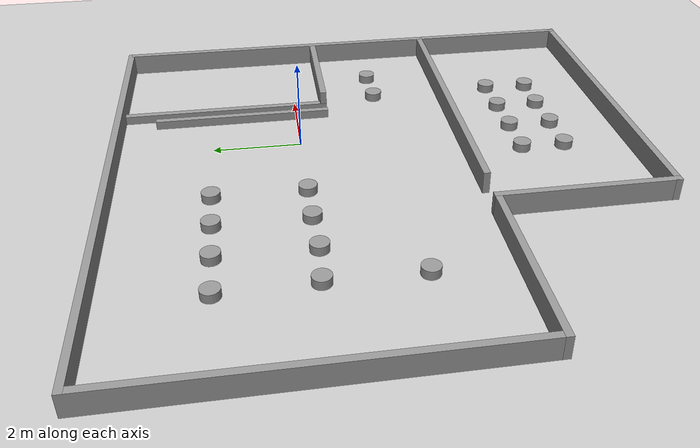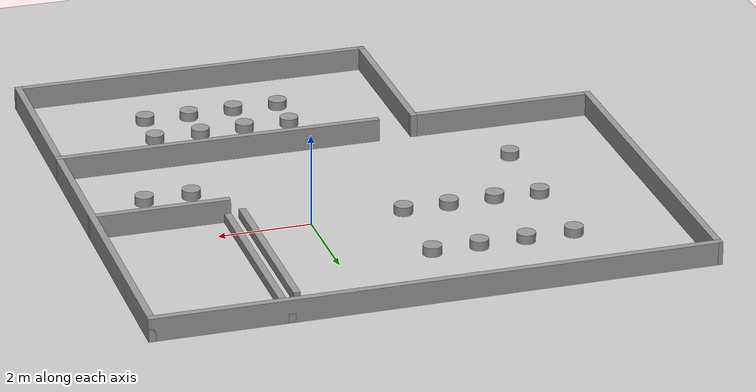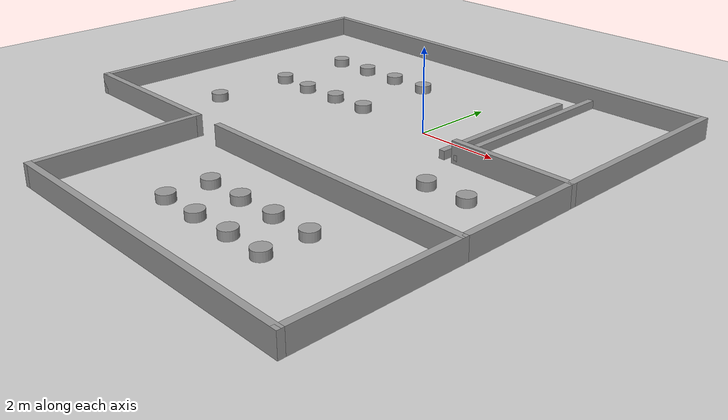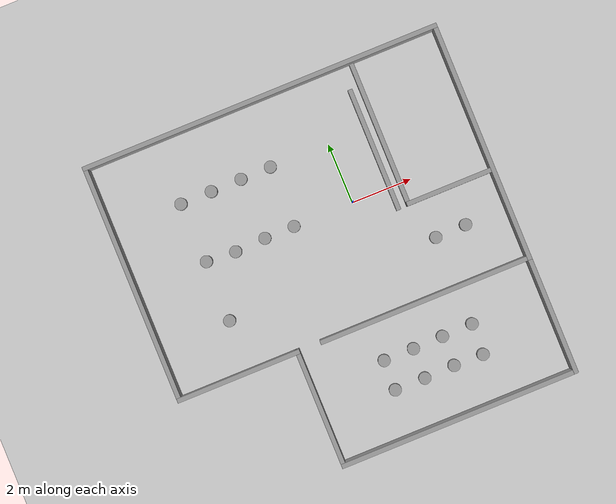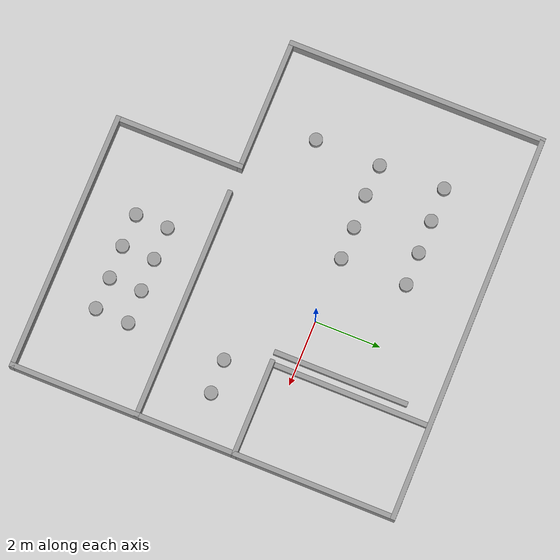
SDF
<sdf version="1.7">
 <world name="default">
  <scene><ambient>0.4 0.4 0.4 1</ambient><background>0.7 0.7 0.7 1</background><shadows>1</shadows></scene>
  <light name="sun" type="directional">
   <pose>0 0 10 0 -0 0</pose>
   <diffuse>0.8 0.8 0.8 1</diffuse>
   <specular>0.2 0.2 0.2 1</specular>
   <attenuation>
    <range>1000</range>
    <constant>0.9</constant>
    <linear>0.01</linear>
    <quadratic>0.001</quadratic>
   </attenuation>
   <direction>-0.5 0.1 -0.9</direction>
   <spot><inner_angle>0</inner_angle><outer_angle>0</outer_angle><falloff>0</falloff></spot>
  </light>
  <model name="ground_plane">
   <static>1</static>
   <link name="link">
    <collision name="collision">
     <geometry><plane><normal>0 0 1</normal><size>100 100</size></plane></geometry>
     <surface>
      <contact><collide_bitmask>65535</collide_bitmask></contact>
      <friction><ode><mu>100</mu><mu2>50</mu2></ode></friction>
     </surface>
    </collision>
    <visual name="visual">
     <cast_shadows>0</cast_shadows>
     <geometry><plane><normal>0 0 1</normal><size>100 100</size></plane></geometry>
     <material>
      <script><uri>file://media/materials/scripts/gazebo.material</uri><name>Gazebo/Grey</name></script>
     </material>
    </visual>
   </link>
  </model>
  <physics type="ode">
   <real_time_update_rate>1000</real_time_update_rate>
   <max_step_size>0.001</max_step_size>
   <real_time_factor>1</real_time_factor>
   <ode>
    <solver>
     <type>quick</type>
     <iters>150</iters>
     <precon_iters>0</precon_iters>
     <sor>1.4</sor>
     <use_dynamic_moi_rescaling>1</use_dynamic_moi_rescaling>
    </solver>
    <constraints>
     <cfm>1e-05</cfm>
     <erp>0.2</erp>
     <contact_max_correcting_vel>2000</contact_max_correcting_vel>
     <contact_surface_layer>0.01</contact_surface_layer>
    </constraints>
   </ode>
  </physics>
  <gravity>0 0 -9.8</gravity>
  <magnetic_field>6e-06 2.3e-05 -4.2e-05</magnetic_field>
  <atmosphere type="adiabatic"/>
  <spherical_coordinates>
   <surface_model>EARTH_WGS84</surface_model>
   <latitude_deg>0</latitude_deg>
   <longitude_deg>0</longitude_deg>
   <elevation>0</elevation>
   <heading_deg>0</heading_deg>
  </spherical_coordinates>
  <model name="cafe3">
   <pose>-1.4448 -1.6924 0 0 -0 0</pose>
   <link name="Wall_0">
    <collision name="Wall_0_Collision">
     <geometry><box><size>12 0.15 0.5</size></box></geometry>
     <pose>0 0 0.25 0 -0 0</pose>
    </collision>
    <visual name="Wall_0_Visual">
     <pose>0 0 0.25 0 -0 0</pose>
     <geometry><box><size>12 0.15 0.5</size></box></geometry>
     <material>
      <script><uri>file://media/materials/scripts/gazebo.material</uri><name>Gazebo/Grey</name></script>
      <ambient>1 1 1 1</ambient>
     </material>
     <meta><layer>0</layer></meta>
    </visual>
    <pose>0 5.85 0 0 -0 0</pose>
   </link>
   <link name="Wall_1">
    <collision name="Wall_1_Collision">
     <geometry><box><size>8 0.15 0.5</size></box></geometry>
     <pose>0 0 0.25 0 -0 0</pose>
    </collision>
    <visual name="Wall_1_Visual">
     <pose>0 0 0.25 0 -0 0</pose>
     <geometry><box><size>8 0.15 0.5</size></box></geometry>
     <material>
      <script><uri>file://media/materials/scripts/gazebo.material</uri><name>Gazebo/Grey</name></script>
      <ambient>1 1 1 1</ambient>
     </material>
     <meta><layer>0</layer></meta>
    </visual>
    <pose>5.925 1.925 0 0 -0 -1.5708</pose>
   </link>
   <link name="Wall_11">
    <collision name="Wall_11_Collision">
     <geometry><box><size>5 0.15 0.2</size></box></geometry>
     <pose>0 0 0.1 0 -0 0</pose>
    </collision>
    <visual name="Wall_11_Visual">
     <pose>0 0 0.1 0 -0 0</pose>
     <geometry><box><size>5 0.15 0.2</size></box></geometry>
     <material>
      <script><uri>file://media/materials/scripts/gazebo.material</uri><name>Gazebo/Grey</name></script>
      <ambient>1 1 1 1</ambient>
     </material>
     <meta><layer>0</layer></meta>
    </visual>
    <pose>3.075 3.425 0 0 -0 -1.5708</pose>
   </link>
   <link name="Wall_15">
    <collision name="Wall_15_Collision">
     <geometry><box><size>3 0.15 0.5</size></box></geometry>
     <pose>0 0 0.25 0 -0 0</pose>
    </collision>
    <visual name="Wall_15_Visual">
     <pose>0 0 0.25 0 -0 0</pose>
     <geometry><box><size>3 0.15 0.5</size></box></geometry>
     <material>
      <script><uri>file://media/materials/scripts/gazebo.material</uri><name>Gazebo/Grey</name></script>
      <ambient>1 1 1 1</ambient>
     </material>
     <meta><layer>0</layer></meta>
    </visual>
    <pose>4.5 1 0 0 -0 0</pose>
   </link>
   <link name="Wall_18">
    <collision name="Wall_18_Collision">
     <geometry><box><size>4.114 0.15 0.2</size></box></geometry>
     <pose>0 0 0.1 0 -0 0</pose>
    </collision>
    <visual name="Wall_18_Visual">
     <pose>0 0 0.1 0 -0 0</pose>
     <geometry><box><size>4.114 0.15 0.2</size></box></geometry>
     <material>
      <script><uri>file://media/materials/scripts/gazebo.material</uri><name>Gazebo/Grey</name></script>
      <ambient>1 1 1 1</ambient>
     </material>
     <meta><layer>0</layer></meta>
    </visual>
    <pose>2.725 2.982 0 0 -0 1.5708</pose>
   </link>
   <link name="Wall_24">
    <collision name="Wall_24_Collision">
     <geometry><box><size>4.15 0.15 0.5</size></box></geometry>
     <pose>0 0 0.25 0 -0 0</pose>
    </collision>
    <visual name="Wall_24_Visual">
     <pose>0 0 0.25 0 -0 0</pose>
     <geometry><box><size>4.15 0.15 0.5</size></box></geometry>
     <material>
      <script><uri>file://media/materials/scripts/gazebo.material</uri><name>Gazebo/Grey</name></script>
      <ambient>1 1 1 1</ambient>
     </material>
     <meta><layer>0</layer></meta>
    </visual>
    <pose>-3.925 -2 0 0 -0 0</pose>
   </link>
   <link name="Wall_26">
    <collision name="Wall_26_Collision">
     <geometry><box><size>7.15 0.15 0.5</size></box></geometry>
     <pose>0 0 0.25 0 -0 0</pose>
    </collision>
    <visual name="Wall_26_Visual">
     <pose>0 0 0.25 0 -0 0</pose>
     <geometry><box><size>7.15 0.15 0.5</size></box></geometry>
     <material>
      <script><uri>file://media/materials/scripts/gazebo.material</uri><name>Gazebo/Grey</name></script>
      <ambient>1 1 1 1</ambient>
     </material>
     <meta><layer>0</layer></meta>
    </visual>
    <pose>2.425 -2 0 0 -0 0</pose>
   </link>
   <link name="Wall_3">
    <collision name="Wall_3_Collision">
     <geometry><box><size>8 0.15 0.5</size></box></geometry>
     <pose>0 0 0.25 0 -0 0</pose>
    </collision>
    <visual name="Wall_3_Visual">
     <pose>0 0 0.25 0 -0 0</pose>
     <geometry><box><size>8 0.15 0.5</size></box></geometry>
     <material>
      <script><uri>file://media/materials/scripts/gazebo.material</uri><name>Gazebo/Grey</name></script>
      <ambient>1 1 1 1</ambient>
     </material>
     <meta><layer>0</layer></meta>
    </visual>
    <pose>-5.925 1.925 0 0 -0 1.5708</pose>
   </link>
   <link name="Wall_5">
    <collision name="Wall_5_Collision">
     <geometry><box><size>4 0.15 0.5</size></box></geometry>
     <pose>0 0 0.25 0 -0 0</pose>
    </collision>
    <visual name="Wall_5_Visual">
     <pose>0 0 0.25 0 -0 0</pose>
     <geometry><box><size>4 0.15 0.5</size></box></geometry>
     <material>
      <script><uri>file://media/materials/scripts/gazebo.material</uri><name>Gazebo/Grey</name></script>
      <ambient>1 1 1 1</ambient>
     </material>
     <meta><layer>0</layer></meta>
    </visual>
    <pose>5.925 -3.925 0 0 -0 -1.5708</pose>
   </link>
   <link name="Wall_6">
    <collision name="Wall_6_Collision">
     <geometry><box><size>8 0.15 0.5</size></box></geometry>
     <pose>0 0 0.25 0 -0 0</pose>
    </collision>
    <visual name="Wall_6_Visual">
     <pose>0 0 0.25 0 -0 0</pose>
     <geometry><box><size>8 0.15 0.5</size></box></geometry>
     <material>
      <script><uri>file://media/materials/scripts/gazebo.material</uri><name>Gazebo/Grey</name></script>
      <ambient>1 1 1 1</ambient>
     </material>
     <meta><layer>0</layer></meta>
    </visual>
    <pose>2 -5.85 0 0 -0 3.14159</pose>
   </link>
   <link name="Wall_7">
    <collision name="Wall_7_Collision">
     <geometry><box><size>4 0.15 0.5</size></box></geometry>
     <pose>0 0 0.25 0 -0 0</pose>
    </collision>
    <visual name="Wall_7_Visual">
     <pose>0 0 0.25 0 -0 0</pose>
     <geometry><box><size>4 0.15 0.5</size></box></geometry>
     <material>
      <script><uri>file://media/materials/scripts/gazebo.material</uri><name>Gazebo/Grey</name></script>
      <ambient>1 1 1 1</ambient>
     </material>
     <meta><layer>0</layer></meta>
    </visual>
    <pose>-1.925 -3.925 0 0 -0 1.5708</pose>
   </link>
   <static>1</static>
  </model>
  <model name="table_base">
   <link name="link">
    <inertial>
     <mass>0.0270048</mass>
     <inertia>
      <ixx>0.00032097</ixx>
      <ixy>0</ixy>
      <ixz>0</ixz>
      <iyy>0.00032097</iyy>
      <iyz>0</iyz>
      <izz>0.00047814</izz>
     </inertia>
    </inertial>
    <pose>0 0 0.1 0 -0 0</pose>
    <visual name="visual">
     <geometry><cylinder><radius>0.2</radius><length>0.2</length></cylinder></geometry>
     <material>
      <script><name>Gazebo/Grey</name><uri>file://media/materials/scripts/gazebo.material</uri></script>
      <shader type="pixel"><normal_map>__default__</normal_map></shader>
      <ambient>0.3 0.3 0.3 1</ambient>
      <diffuse>0.7 0.7 0.7 1</diffuse>
      <specular>0.01 0.01 0.01 1</specular>
      <emissive>0 0 0 1</emissive>
     </material>
    </visual>
    <collision name="collision">
     <geometry><cylinder><radius>0.2</radius><length>0.2</length></cylinder></geometry>
     <surface>
      <friction>
       <ode><mu>1</mu><mu2>1</mu2><fdir1>0 0 0</fdir1><slip1>0</slip1><slip2>0</slip2></ode>
       <torsional>
        <coefficient>1</coefficient>
        <patch_radius>0</patch_radius>
        <surface_radius>0</surface_radius>
        <use_patch_radius>1</use_patch_radius>
        <ode><slip>0</slip></ode>
       </torsional>
      </friction>
      <bounce><restitution_coefficient>0</restitution_coefficient><threshold>1e+06</threshold></bounce>
      <contact>
       <collide_without_contact>0</collide_without_contact>
       <collide_without_contact_bitmask>1</collide_without_contact_bitmask>
       <collide_bitmask>1</collide_bitmask>
       <ode>
        <soft_cfm>0</soft_cfm>
        <soft_erp>0.2</soft_erp>
        <kp>1e+13</kp>
        <kd>1</kd>
        <max_vel>0.01</max_vel>
        <min_depth>0</min_depth>
       </ode>
       <bullet>
        <split_impulse>1</split_impulse>
        <split_impulse_penetration_threshold>-0.01</split_impulse_penetration_threshold>
        <soft_cfm>0</soft_cfm>
        <soft_erp>0.2</soft_erp>
        <kp>1e+13</kp>
        <kd>1</kd>
       </bullet>
      </contact>
     </surface>
    </collision>
   </link>
   <static>0</static>
   <pose>-5.03496 2.01388 -5e-06 -1.7e-05 -1.7e-05 -6e-06</pose>
  </model>
  <model name="table_base_0">
   <link name="link">
    <inertial>
     <mass>0.0270048</mass>
     <inertia>
      <ixx>0.00032097</ixx>
      <ixy>0</ixy>
      <ixz>0</ixz>
      <iyy>0.00032097</iyy>
      <iyz>0</iyz>
      <izz>0.00047814</izz>
     </inertia>
    </inertial>
    <pose>0 0 0.1 0 -0 0</pose>
    <visual name="visual">
     <geometry><cylinder><radius>0.2</radius><length>0.2</length></cylinder></geometry>
     <material>
      <script><name>Gazebo/Grey</name><uri>file://media/materials/scripts/gazebo.material</uri></script>
      <shader type="pixel"><normal_map>__default__</normal_map></shader>
      <ambient>0.3 0.3 0.3 1</ambient>
      <diffuse>0.7 0.7 0.7 1</diffuse>
      <specular>0.01 0.01 0.01 1</specular>
      <emissive>0 0 0 1</emissive>
     </material>
    </visual>
    <collision name="collision">
     <geometry><cylinder><radius>0.2</radius><length>0.2</length></cylinder></geometry>
     <surface>
      <friction>
       <ode><mu>1</mu><mu2>1</mu2><fdir1>0 0 0</fdir1><slip1>0</slip1><slip2>0</slip2></ode>
       <torsional>
        <coefficient>1</coefficient>
        <patch_radius>0</patch_radius>
        <surface_radius>0</surface_radius>
        <use_patch_radius>1</use_patch_radius>
        <ode><slip>0</slip></ode>
       </torsional>
      </friction>
      <bounce><restitution_coefficient>0</restitution_coefficient><threshold>1e+06</threshold></bounce>
      <contact>
       <collide_without_contact>0</collide_without_contact>
       <collide_without_contact_bitmask>1</collide_without_contact_bitmask>
       <collide_bitmask>1</collide_bitmask>
       <ode>
        <soft_cfm>0</soft_cfm>
        <soft_erp>0.2</soft_erp>
        <kp>1e+13</kp>
        <kd>1</kd>
        <max_vel>0.01</max_vel>
        <min_depth>0</min_depth>
       </ode>
       <bullet>
        <split_impulse>1</split_impulse>
        <split_impulse_penetration_threshold>-0.01</split_impulse_penetration_threshold>
        <soft_cfm>0</soft_cfm>
        <soft_erp>0.2</soft_erp>
        <kp>1e+13</kp>
        <kd>1</kd>
       </bullet>
      </contact>
     </surface>
    </collision>
   </link>
   <static>0</static>
   <pose>-3.99668 2.01918 -5e-06 1.7e-05 1.7e-05 -6e-06</pose>
  </model>
  <model name="table_base_1">
   <link name="link">
    <inertial>
     <mass>0.0270048</mass>
     <inertia>
      <ixx>0.00032097</ixx>
      <ixy>0</ixy>
      <ixz>0</ixz>
      <iyy>0.00032097</iyy>
      <iyz>0</iyz>
      <izz>0.00047814</izz>
     </inertia>
    </inertial>
    <pose>0 0 0.1 0 -0 0</pose>
    <visual name="visual">
     <geometry><cylinder><radius>0.2</radius><length>0.2</length></cylinder></geometry>
     <material>
      <script><name>Gazebo/Grey</name><uri>file://media/materials/scripts/gazebo.material</uri></script>
      <shader type="pixel"><normal_map>__default__</normal_map></shader>
      <ambient>0.3 0.3 0.3 1</ambient>
      <diffuse>0.7 0.7 0.7 1</diffuse>
      <specular>0.01 0.01 0.01 1</specular>
      <emissive>0 0 0 1</emissive>
     </material>
    </visual>
    <collision name="collision">
     <geometry><cylinder><radius>0.2</radius><length>0.2</length></cylinder></geometry>
     <surface>
      <friction>
       <ode><mu>1</mu><mu2>1</mu2><fdir1>0 0 0</fdir1><slip1>0</slip1><slip2>0</slip2></ode>
       <torsional>
        <coefficient>1</coefficient>
        <patch_radius>0</patch_radius>
        <surface_radius>0</surface_radius>
        <use_patch_radius>1</use_patch_radius>
        <ode><slip>0</slip></ode>
       </torsional>
      </friction>
      <bounce><restitution_coefficient>0</restitution_coefficient><threshold>1e+06</threshold></bounce>
      <contact>
       <collide_without_contact>0</collide_without_contact>
       <collide_without_contact_bitmask>1</collide_without_contact_bitmask>
       <collide_bitmask>1</collide_bitmask>
       <ode>
        <soft_cfm>0</soft_cfm>
        <soft_erp>0.2</soft_erp>
        <kp>1e+13</kp>
        <kd>1</kd>
        <max_vel>0.01</max_vel>
        <min_depth>0</min_depth>
       </ode>
       <bullet>
        <split_impulse>1</split_impulse>
        <split_impulse_penetration_threshold>-0.01</split_impulse_penetration_threshold>
        <soft_cfm>0</soft_cfm>
        <soft_erp>0.2</soft_erp>
        <kp>1e+13</kp>
        <kd>1</kd>
       </bullet>
      </contact>
     </surface>
    </collision>
   </link>
   <static>0</static>
   <pose>-2.97946 2.02614 -5e-06 -1.7e-05 -1.7e-05 -6e-06</pose>
  </model>
  <model name="table_base_2">
   <link name="link">
    <inertial>
     <mass>0.0270048</mass>
     <inertia>
      <ixx>0.00032097</ixx>
      <ixy>0</ixy>
      <ixz>0</ixz>
      <iyy>0.00032097</iyy>
      <iyz>0</iyz>
      <izz>0.00047814</izz>
     </inertia>
    </inertial>
    <pose>0 0 0.1 0 -0 0</pose>
    <visual name="visual">
     <geometry><cylinder><radius>0.2</radius><length>0.2</length></cylinder></geometry>
     <material>
      <script><name>Gazebo/Grey</name><uri>file://media/materials/scripts/gazebo.material</uri></script>
      <shader type="pixel"><normal_map>__default__</normal_map></shader>
      <ambient>0.3 0.3 0.3 1</ambient>
      <diffuse>0.7 0.7 0.7 1</diffuse>
      <specular>0.01 0.01 0.01 1</specular>
      <emissive>0 0 0 1</emissive>
     </material>
    </visual>
    <collision name="collision">
     <geometry><cylinder><radius>0.2</radius><length>0.2</length></cylinder></geometry>
     <surface>
      <friction>
       <ode><mu>1</mu><mu2>1</mu2><fdir1>0 0 0</fdir1><slip1>0</slip1><slip2>0</slip2></ode>
       <torsional>
        <coefficient>1</coefficient>
        <patch_radius>0</patch_radius>
        <surface_radius>0</surface_radius>
        <use_patch_radius>1</use_patch_radius>
        <ode><slip>0</slip></ode>
       </torsional>
      </friction>
      <bounce><restitution_coefficient>0</restitution_coefficient><threshold>1e+06</threshold></bounce>
      <contact>
       <collide_without_contact>0</collide_without_contact>
       <collide_without_contact_bitmask>1</collide_without_contact_bitmask>
       <collide_bitmask>1</collide_bitmask>
       <ode>
        <soft_cfm>0</soft_cfm>
        <soft_erp>0.2</soft_erp>
        <kp>1e+13</kp>
        <kd>1</kd>
        <max_vel>0.01</max_vel>
        <min_depth>0</min_depth>
       </ode>
       <bullet>
        <split_impulse>1</split_impulse>
        <split_impulse_penetration_threshold>-0.01</split_impulse_penetration_threshold>
        <soft_cfm>0</soft_cfm>
        <soft_erp>0.2</soft_erp>
        <kp>1e+13</kp>
        <kd>1</kd>
       </bullet>
      </contact>
     </surface>
    </collision>
   </link>
   <static>0</static>
   <pose>-1.9709 2.03333 -5e-06 1.7e-05 1.7e-05 -5e-06</pose>
  </model>
  <model name="table_base_3">
   <link name="link">
    <inertial>
     <mass>0.0270048</mass>
     <inertia>
      <ixx>0.00032097</ixx>
      <ixy>0</ixy>
      <ixz>0</ixz>
      <iyy>0.00032097</iyy>
      <iyz>0</iyz>
      <izz>0.00047814</izz>
     </inertia>
    </inertial>
    <pose>0 0 0.1 0 -0 0</pose>
    <visual name="visual">
     <geometry><cylinder><radius>0.2</radius><length>0.2</length></cylinder></geometry>
     <material>
      <script><name>Gazebo/Grey</name><uri>file://media/materials/scripts/gazebo.material</uri></script>
      <shader type="pixel"><normal_map>__default__</normal_map></shader>
      <ambient>0.3 0.3 0.3 1</ambient>
      <diffuse>0.7 0.7 0.7 1</diffuse>
      <specular>0.01 0.01 0.01 1</specular>
      <emissive>0 0 0 1</emissive>
     </material>
    </visual>
    <collision name="collision">
     <geometry><cylinder><radius>0.2</radius><length>0.2</length></cylinder></geometry>
     <surface>
      <friction>
       <ode><mu>1</mu><mu2>1</mu2><fdir1>0 0 0</fdir1><slip1>0</slip1><slip2>0</slip2></ode>
       <torsional>
        <coefficient>1</coefficient>
        <patch_radius>0</patch_radius>
        <surface_radius>0</surface_radius>
        <use_patch_radius>1</use_patch_radius>
        <ode><slip>0</slip></ode>
       </torsional>
      </friction>
      <bounce><restitution_coefficient>0</restitution_coefficient><threshold>1e+06</threshold></bounce>
      <contact>
       <collide_without_contact>0</collide_without_contact>
       <collide_without_contact_bitmask>1</collide_without_contact_bitmask>
       <collide_bitmask>1</collide_bitmask>
       <ode>
        <soft_cfm>0</soft_cfm>
        <soft_erp>0.2</soft_erp>
        <kp>1e+13</kp>
        <kd>1</kd>
        <max_vel>0.01</max_vel>
        <min_depth>0</min_depth>
       </ode>
       <bullet>
        <split_impulse>1</split_impulse>
        <split_impulse_penetration_threshold>-0.01</split_impulse_penetration_threshold>
        <soft_cfm>0</soft_cfm>
        <soft_erp>0.2</soft_erp>
        <kp>1e+13</kp>
        <kd>1</kd>
       </bullet>
      </contact>
     </surface>
    </collision>
   </link>
   <static>0</static>
   <pose>-4.97866 0.023394 -5e-06 -1.7e-05 -1.7e-05 -5e-06</pose>
  </model>
  <model name="table_base_4">
   <link name="link">
    <inertial>
     <mass>0.0270048</mass>
     <inertia>
      <ixx>0.00032097</ixx>
      <ixy>0</ixy>
      <ixz>0</ixz>
      <iyy>0.00032097</iyy>
      <iyz>0</iyz>
      <izz>0.00047814</izz>
     </inertia>
    </inertial>
    <pose>0 0 0.1 0 -0 0</pose>
    <visual name="visual">
     <geometry><cylinder><radius>0.2</radius><length>0.2</length></cylinder></geometry>
     <material>
      <script><name>Gazebo/Grey</name><uri>file://media/materials/scripts/gazebo.material</uri></script>
      <shader type="pixel"><normal_map>__default__</normal_map></shader>
      <ambient>0.3 0.3 0.3 1</ambient>
      <diffuse>0.7 0.7 0.7 1</diffuse>
      <specular>0.01 0.01 0.01 1</specular>
      <emissive>0 0 0 1</emissive>
     </material>
    </visual>
    <collision name="collision">
     <geometry><cylinder><radius>0.2</radius><length>0.2</length></cylinder></geometry>
     <surface>
      <friction>
       <ode><mu>1</mu><mu2>1</mu2><fdir1>0 0 0</fdir1><slip1>0</slip1><slip2>0</slip2></ode>
       <torsional>
        <coefficient>1</coefficient>
        <patch_radius>0</patch_radius>
        <surface_radius>0</surface_radius>
        <use_patch_radius>1</use_patch_radius>
        <ode><slip>0</slip></ode>
       </torsional>
      </friction>
      <bounce><restitution_coefficient>0</restitution_coefficient><threshold>1e+06</threshold></bounce>
      <contact>
       <collide_without_contact>0</collide_without_contact>
       <collide_without_contact_bitmask>1</collide_without_contact_bitmask>
       <collide_bitmask>1</collide_bitmask>
       <ode>
        <soft_cfm>0</soft_cfm>
        <soft_erp>0.2</soft_erp>
        <kp>1e+13</kp>
        <kd>1</kd>
        <max_vel>0.01</max_vel>
        <min_depth>0</min_depth>
       </ode>
       <bullet>
        <split_impulse>1</split_impulse>
        <split_impulse_penetration_threshold>-0.01</split_impulse_penetration_threshold>
        <soft_cfm>0</soft_cfm>
        <soft_erp>0.2</soft_erp>
        <kp>1e+13</kp>
        <kd>1</kd>
       </bullet>
      </contact>
     </surface>
    </collision>
   </link>
   <static>0</static>
   <pose>-4.0006 -0.033874 -5e-06 1.7e-05 1.7e-05 -5e-06</pose>
  </model>
  <model name="table_base_5">
   <link name="link">
    <inertial>
     <mass>0.0270048</mass>
     <inertia>
      <ixx>0.00032097</ixx>
      <ixy>0</ixy>
      <ixz>0</ixz>
      <iyy>0.00032097</iyy>
      <iyz>0</iyz>
      <izz>0.00047814</izz>
     </inertia>
    </inertial>
    <pose>0 0 0.1 0 -0 0</pose>
    <visual name="visual">
     <geometry><cylinder><radius>0.2</radius><length>0.2</length></cylinder></geometry>
     <material>
      <script><name>Gazebo/Grey</name><uri>file://media/materials/scripts/gazebo.material</uri></script>
      <shader type="pixel"><normal_map>__default__</normal_map></shader>
      <ambient>0.3 0.3 0.3 1</ambient>
      <diffuse>0.7 0.7 0.7 1</diffuse>
      <specular>0.01 0.01 0.01 1</specular>
      <emissive>0 0 0 1</emissive>
     </material>
    </visual>
    <collision name="collision">
     <geometry><cylinder><radius>0.2</radius><length>0.2</length></cylinder></geometry>
     <surface>
      <friction>
       <ode><mu>1</mu><mu2>1</mu2><fdir1>0 0 0</fdir1><slip1>0</slip1><slip2>0</slip2></ode>
       <torsional>
        <coefficient>1</coefficient>
        <patch_radius>0</patch_radius>
        <surface_radius>0</surface_radius>
        <use_patch_radius>1</use_patch_radius>
        <ode><slip>0</slip></ode>
       </torsional>
      </friction>
      <bounce><restitution_coefficient>0</restitution_coefficient><threshold>1e+06</threshold></bounce>
      <contact>
       <collide_without_contact>0</collide_without_contact>
       <collide_without_contact_bitmask>1</collide_without_contact_bitmask>
       <collide_bitmask>1</collide_bitmask>
       <ode>
        <soft_cfm>0</soft_cfm>
        <soft_erp>0.2</soft_erp>
        <kp>1e+13</kp>
        <kd>1</kd>
        <max_vel>0.01</max_vel>
        <min_depth>0</min_depth>
       </ode>
       <bullet>
        <split_impulse>1</split_impulse>
        <split_impulse_penetration_threshold>-0.01</split_impulse_penetration_threshold>
        <soft_cfm>0</soft_cfm>
        <soft_erp>0.2</soft_erp>
        <kp>1e+13</kp>
        <kd>1</kd>
       </bullet>
      </contact>
     </surface>
    </collision>
   </link>
   <static>0</static>
   <pose>-2.98433 0.009303 -5e-06 1.7e-05 1.7e-05 -4e-06</pose>
  </model>
  <model name="table_base_6">
   <link name="link">
    <inertial>
     <mass>0.0270048</mass>
     <inertia>
      <ixx>0.00032097</ixx>
      <ixy>0</ixy>
      <ixz>0</ixz>
      <iyy>0.00032097</iyy>
      <iyz>0</iyz>
      <izz>0.00047814</izz>
     </inertia>
    </inertial>
    <pose>0 0 0.1 0 -0 0</pose>
    <visual name="visual">
     <geometry><cylinder><radius>0.2</radius><length>0.2</length></cylinder></geometry>
     <material>
      <script><name>Gazebo/Grey</name><uri>file://media/materials/scripts/gazebo.material</uri></script>
      <shader type="pixel"><normal_map>__default__</normal_map></shader>
      <ambient>0.3 0.3 0.3 1</ambient>
      <diffuse>0.7 0.7 0.7 1</diffuse>
      <specular>0.01 0.01 0.01 1</specular>
      <emissive>0 0 0 1</emissive>
     </material>
    </visual>
    <collision name="collision">
     <geometry><cylinder><radius>0.2</radius><length>0.2</length></cylinder></geometry>
     <surface>
      <friction>
       <ode><mu>1</mu><mu2>1</mu2><fdir1>0 0 0</fdir1><slip1>0</slip1><slip2>0</slip2></ode>
       <torsional>
        <coefficient>1</coefficient>
        <patch_radius>0</patch_radius>
        <surface_radius>0</surface_radius>
        <use_patch_radius>1</use_patch_radius>
        <ode><slip>0</slip></ode>
       </torsional>
      </friction>
      <bounce><restitution_coefficient>0</restitution_coefficient><threshold>1e+06</threshold></bounce>
      <contact>
       <collide_without_contact>0</collide_without_contact>
       <collide_without_contact_bitmask>1</collide_without_contact_bitmask>
       <collide_bitmask>1</collide_bitmask>
       <ode>
        <soft_cfm>0</soft_cfm>
        <soft_erp>0.2</soft_erp>
        <kp>1e+13</kp>
        <kd>1</kd>
        <max_vel>0.01</max_vel>
        <min_depth>0</min_depth>
       </ode>
       <bullet>
        <split_impulse>1</split_impulse>
        <split_impulse_penetration_threshold>-0.01</split_impulse_penetration_threshold>
        <soft_cfm>0</soft_cfm>
        <soft_erp>0.2</soft_erp>
        <kp>1e+13</kp>
        <kd>1</kd>
       </bullet>
      </contact>
     </surface>
    </collision>
   </link>
   <static>0</static>
   <pose>-1.98792 0.009507 -5e-06 -1.7e-05 -1.7e-05 -4e-06</pose>
  </model>
  <model name="table_base_7">
   <link name="link">
    <inertial>
     <mass>0.0270048</mass>
     <inertia>
      <ixx>0.00032097</ixx>
      <ixy>0</ixy>
      <ixz>0</ixz>
      <iyy>0.00032097</iyy>
      <iyz>0</iyz>
      <izz>0.00047814</izz>
     </inertia>
    </inertial>
    <pose>0 0 0.1 0 -0 0</pose>
    <visual name="visual">
     <geometry><cylinder><radius>0.2</radius><length>0.2</length></cylinder></geometry>
     <material>
      <script><name>Gazebo/Grey</name><uri>file://media/materials/scripts/gazebo.material</uri></script>
      <shader type="pixel"><normal_map>__default__</normal_map></shader>
      <ambient>0.3 0.3 0.3 1</ambient>
      <diffuse>0.7 0.7 0.7 1</diffuse>
      <specular>0.01 0.01 0.01 1</specular>
      <emissive>0 0 0 1</emissive>
     </material>
    </visual>
    <collision name="collision">
     <geometry><cylinder><radius>0.2</radius><length>0.2</length></cylinder></geometry>
     <surface>
      <friction>
       <ode><mu>1</mu><mu2>1</mu2><fdir1>0 0 0</fdir1><slip1>0</slip1><slip2>0</slip2></ode>
       <torsional>
        <coefficient>1</coefficient>
        <patch_radius>0</patch_radius>
        <surface_radius>0</surface_radius>
        <use_patch_radius>1</use_patch_radius>
        <ode><slip>0</slip></ode>
       </torsional>
      </friction>
      <bounce><restitution_coefficient>0</restitution_coefficient><threshold>1e+06</threshold></bounce>
      <contact>
       <collide_without_contact>0</collide_without_contact>
       <collide_without_contact_bitmask>1</collide_without_contact_bitmask>
       <collide_bitmask>1</collide_bitmask>
       <ode>
        <soft_cfm>0</soft_cfm>
        <soft_erp>0.2</soft_erp>
        <kp>1e+13</kp>
        <kd>1</kd>
        <max_vel>0.01</max_vel>
        <min_depth>0</min_depth>
       </ode>
       <bullet>
        <split_impulse>1</split_impulse>
        <split_impulse_penetration_threshold>-0.01</split_impulse_penetration_threshold>
        <soft_cfm>0</soft_cfm>
        <soft_erp>0.2</soft_erp>
        <kp>1e+13</kp>
        <kd>1</kd>
       </bullet>
      </contact>
     </surface>
    </collision>
   </link>
   <static>0</static>
   <pose>2.03706 -2.01253 -5e-06 1.7e-05 1.7e-05 -4e-06</pose>
  </model>
  <model name="table_base_8">
   <link name="link">
    <inertial>
     <mass>0.0270048</mass>
     <inertia>
      <ixx>0.00032097</ixx>
      <ixy>0</ixy>
      <ixz>0</ixz>
      <iyy>0.00032097</iyy>
      <iyz>0</iyz>
      <izz>0.00047814</izz>
     </inertia>
    </inertial>
    <pose>0 0 0.1 0 -0 0</pose>
    <visual name="visual">
     <geometry><cylinder><radius>0.2</radius><length>0.2</length></cylinder></geometry>
     <material>
      <script><name>Gazebo/Grey</name><uri>file://media/materials/scripts/gazebo.material</uri></script>
      <shader type="pixel"><normal_map>__default__</normal_map></shader>
      <ambient>0.3 0.3 0.3 1</ambient>
      <diffuse>0.7 0.7 0.7 1</diffuse>
      <specular>0.01 0.01 0.01 1</specular>
      <emissive>0 0 0 1</emissive>
     </material>
    </visual>
    <collision name="collision">
     <geometry><cylinder><radius>0.2</radius><length>0.2</length></cylinder></geometry>
     <surface>
      <friction>
       <ode><mu>1</mu><mu2>1</mu2><fdir1>0 0 0</fdir1><slip1>0</slip1><slip2>0</slip2></ode>
       <torsional>
        <coefficient>1</coefficient>
        <patch_radius>0</patch_radius>
        <surface_radius>0</surface_radius>
        <use_patch_radius>1</use_patch_radius>
        <ode><slip>0</slip></ode>
       </torsional>
      </friction>
      <bounce><restitution_coefficient>0</restitution_coefficient><threshold>1e+06</threshold></bounce>
      <contact>
       <collide_without_contact>0</collide_without_contact>
       <collide_without_contact_bitmask>1</collide_without_contact_bitmask>
       <collide_bitmask>1</collide_bitmask>
       <ode>
        <soft_cfm>0</soft_cfm>
        <soft_erp>0.2</soft_erp>
        <kp>1e+13</kp>
        <kd>1</kd>
        <max_vel>0.01</max_vel>
        <min_depth>0</min_depth>
       </ode>
       <bullet>
        <split_impulse>1</split_impulse>
        <split_impulse_penetration_threshold>-0.01</split_impulse_penetration_threshold>
        <soft_cfm>0</soft_cfm>
        <soft_erp>0.2</soft_erp>
        <kp>1e+13</kp>
        <kd>1</kd>
       </bullet>
      </contact>
     </surface>
    </collision>
   </link>
   <static>0</static>
   <pose>3.062 -1.99347 -5e-06 -1.7e-05 -1.7e-05 -3e-06</pose>
  </model>
  <model name="table_base_9">
   <link name="link">
    <inertial>
     <mass>0.0270048</mass>
     <inertia>
      <ixx>0.00032097</ixx>
      <ixy>0</ixy>
      <ixz>0</ixz>
      <iyy>0.00032097</iyy>
      <iyz>0</iyz>
      <izz>0.00047814</izz>
     </inertia>
    </inertial>
    <pose>0 0 0.1 0 -0 0</pose>
    <visual name="visual">
     <geometry><cylinder><radius>0.2</radius><length>0.2</length></cylinder></geometry>
     <material>
      <script><name>Gazebo/Grey</name><uri>file://media/materials/scripts/gazebo.material</uri></script>
      <shader type="pixel"><normal_map>__default__</normal_map></shader>
      <ambient>0.3 0.3 0.3 1</ambient>
      <diffuse>0.7 0.7 0.7 1</diffuse>
      <specular>0.01 0.01 0.01 1</specular>
      <emissive>0 0 0 1</emissive>
     </material>
    </visual>
    <collision name="collision">
     <geometry><cylinder><radius>0.2</radius><length>0.2</length></cylinder></geometry>
     <surface>
      <friction>
       <ode><mu>1</mu><mu2>1</mu2><fdir1>0 0 0</fdir1><slip1>0</slip1><slip2>0</slip2></ode>
       <torsional>
        <coefficient>1</coefficient>
        <patch_radius>0</patch_radius>
        <surface_radius>0</surface_radius>
        <use_patch_radius>1</use_patch_radius>
        <ode><slip>0</slip></ode>
       </torsional>
      </friction>
      <bounce><restitution_coefficient>0</restitution_coefficient><threshold>1e+06</threshold></bounce>
      <contact>
       <collide_without_contact>0</collide_without_contact>
       <collide_without_contact_bitmask>1</collide_without_contact_bitmask>
       <collide_bitmask>1</collide_bitmask>
       <ode>
        <soft_cfm>0</soft_cfm>
        <soft_erp>0.2</soft_erp>
        <kp>1e+13</kp>
        <kd>1</kd>
        <max_vel>0.01</max_vel>
        <min_depth>0</min_depth>
       </ode>
       <bullet>
        <split_impulse>1</split_impulse>
        <split_impulse_penetration_threshold>-0.01</split_impulse_penetration_threshold>
        <soft_cfm>0</soft_cfm>
        <soft_erp>0.2</soft_erp>
        <kp>1e+13</kp>
        <kd>1</kd>
       </bullet>
      </contact>
     </surface>
    </collision>
   </link>
   <static>0</static>
   <pose>-5.00527 -1.98553 -5e-06 1.7e-05 1.7e-05 -3e-06</pose>
  </model>
  <model name="table_base_10">
   <link name="link">
    <inertial>
     <mass>0.0270048</mass>
     <inertia>
      <ixx>0.00032097</ixx>
      <ixy>0</ixy>
      <ixz>0</ixz>
      <iyy>0.00032097</iyy>
      <iyz>0</iyz>
      <izz>0.00047814</izz>
     </inertia>
    </inertial>
    <pose>0 0 0.1 0 -0 0</pose>
    <visual name="visual">
     <geometry><cylinder><radius>0.2</radius><length>0.2</length></cylinder></geometry>
     <material>
      <script><name>Gazebo/Grey</name><uri>file://media/materials/scripts/gazebo.material</uri></script>
      <shader type="pixel"><normal_map>__default__</normal_map></shader>
      <ambient>0.3 0.3 0.3 1</ambient>
      <diffuse>0.7 0.7 0.7 1</diffuse>
      <specular>0.01 0.01 0.01 1</specular>
      <emissive>0 0 0 1</emissive>
     </material>
    </visual>
    <collision name="collision">
     <geometry><cylinder><radius>0.2</radius><length>0.2</length></cylinder></geometry>
     <surface>
      <friction>
       <ode><mu>1</mu><mu2>1</mu2><fdir1>0 0 0</fdir1><slip1>0</slip1><slip2>0</slip2></ode>
       <torsional>
        <coefficient>1</coefficient>
        <patch_radius>0</patch_radius>
        <surface_radius>0</surface_radius>
        <use_patch_radius>1</use_patch_radius>
        <ode><slip>0</slip></ode>
       </torsional>
      </friction>
      <bounce><restitution_coefficient>0</restitution_coefficient><threshold>1e+06</threshold></bounce>
      <contact>
       <collide_without_contact>0</collide_without_contact>
       <collide_without_contact_bitmask>1</collide_without_contact_bitmask>
       <collide_bitmask>1</collide_bitmask>
       <ode>
        <soft_cfm>0</soft_cfm>
        <soft_erp>0.2</soft_erp>
        <kp>1e+13</kp>
        <kd>1</kd>
        <max_vel>0.01</max_vel>
        <min_depth>0</min_depth>
       </ode>
       <bullet>
        <split_impulse>1</split_impulse>
        <split_impulse_penetration_threshold>-0.01</split_impulse_penetration_threshold>
        <soft_cfm>0</soft_cfm>
        <soft_erp>0.2</soft_erp>
        <kp>1e+13</kp>
        <kd>1</kd>
       </bullet>
      </contact>
     </surface>
    </collision>
   </link>
   <static>0</static>
   <pose>-0.951521 -5.00016 -5e-06 -1.7e-05 -1.7e-05 -3e-06</pose>
  </model>
  <model name="table_base_11">
   <link name="link">
    <inertial>
     <mass>0.0270048</mass>
     <inertia>
      <ixx>0.00032097</ixx>
      <ixy>0</ixy>
      <ixz>0</ixz>
      <iyy>0.00032097</iyy>
      <iyz>0</iyz>
      <izz>0.00047814</izz>
     </inertia>
    </inertial>
    <pose>0 0 0.1 0 -0 0</pose>
    <visual name="visual">
     <geometry><cylinder><radius>0.2</radius><length>0.2</length></cylinder></geometry>
     <material>
      <script><name>Gazebo/Grey</name><uri>file://media/materials/scripts/gazebo.material</uri></script>
      <shader type="pixel"><normal_map>__default__</normal_map></shader>
      <ambient>0.3 0.3 0.3 1</ambient>
      <diffuse>0.7 0.7 0.7 1</diffuse>
      <specular>0.01 0.01 0.01 1</specular>
      <emissive>0 0 0 1</emissive>
     </material>
    </visual>
    <collision name="collision">
     <geometry><cylinder><radius>0.2</radius><length>0.2</length></cylinder></geometry>
     <surface>
      <friction>
       <ode><mu>1</mu><mu2>1</mu2><fdir1>0 0 0</fdir1><slip1>0</slip1><slip2>0</slip2></ode>
       <torsional>
        <coefficient>1</coefficient>
        <patch_radius>0</patch_radius>
        <surface_radius>0</surface_radius>
        <use_patch_radius>1</use_patch_radius>
        <ode><slip>0</slip></ode>
       </torsional>
      </friction>
      <bounce><restitution_coefficient>0</restitution_coefficient><threshold>1e+06</threshold></bounce>
      <contact>
       <collide_without_contact>0</collide_without_contact>
       <collide_without_contact_bitmask>1</collide_without_contact_bitmask>
       <collide_bitmask>1</collide_bitmask>
       <ode>
        <soft_cfm>0</soft_cfm>
        <soft_erp>0.2</soft_erp>
        <kp>1e+13</kp>
        <kd>1</kd>
        <max_vel>0.01</max_vel>
        <min_depth>0</min_depth>
       </ode>
       <bullet>
        <split_impulse>1</split_impulse>
        <split_impulse_penetration_threshold>-0.01</split_impulse_penetration_threshold>
        <soft_cfm>0</soft_cfm>
        <soft_erp>0.2</soft_erp>
        <kp>1e+13</kp>
        <kd>1</kd>
       </bullet>
      </contact>
     </surface>
    </collision>
   </link>
   <static>0</static>
   <pose>0.049758 -5.0036 -5e-06 1.7e-05 1.7e-05 -2e-06</pose>
  </model>
  <model name="table_base_12">
   <link name="link">
    <inertial>
     <mass>0.0270048</mass>
     <inertia>
      <ixx>0.00032097</ixx>
      <ixy>0</ixy>
      <ixz>0</ixz>
      <iyy>0.00032097</iyy>
      <iyz>0</iyz>
      <izz>0.00047814</izz>
     </inertia>
    </inertial>
    <pose>0 0 0.1 0 -0 0</pose>
    <visual name="visual">
     <geometry><cylinder><radius>0.2</radius><length>0.2</length></cylinder></geometry>
     <material>
      <script><name>Gazebo/Grey</name><uri>file://media/materials/scripts/gazebo.material</uri></script>
      <shader type="pixel"><normal_map>__default__</normal_map></shader>
      <ambient>0.3 0.3 0.3 1</ambient>
      <diffuse>0.7 0.7 0.7 1</diffuse>
      <specular>0.01 0.01 0.01 1</specular>
      <emissive>0 0 0 1</emissive>
     </material>
    </visual>
    <collision name="collision">
     <geometry><cylinder><radius>0.2</radius><length>0.2</length></cylinder></geometry>
     <surface>
      <friction>
       <ode><mu>1</mu><mu2>1</mu2><fdir1>0 0 0</fdir1><slip1>0</slip1><slip2>0</slip2></ode>
       <torsional>
        <coefficient>1</coefficient>
        <patch_radius>0</patch_radius>
        <surface_radius>0</surface_radius>
        <use_patch_radius>1</use_patch_radius>
        <ode><slip>0</slip></ode>
       </torsional>
      </friction>
      <bounce><restitution_coefficient>0</restitution_coefficient><threshold>1e+06</threshold></bounce>
      <contact>
       <collide_without_contact>0</collide_without_contact>
       <collide_without_contact_bitmask>1</collide_without_contact_bitmask>
       <collide_bitmask>1</collide_bitmask>
       <ode>
        <soft_cfm>0</soft_cfm>
        <soft_erp>0.2</soft_erp>
        <kp>1e+13</kp>
        <kd>1</kd>
        <max_vel>0.01</max_vel>
        <min_depth>0</min_depth>
       </ode>
       <bullet>
        <split_impulse>1</split_impulse>
        <split_impulse_penetration_threshold>-0.01</split_impulse_penetration_threshold>
        <soft_cfm>0</soft_cfm>
        <soft_erp>0.2</soft_erp>
        <kp>1e+13</kp>
        <kd>1</kd>
       </bullet>
      </contact>
     </surface>
    </collision>
   </link>
   <static>0</static>
   <pose>1.04673 -4.98978 -5e-06 -1.7e-05 -1.7e-05 -2e-06</pose>
  </model>
  <model name="table_base_13">
   <link name="link">
    <inertial>
     <mass>0.0270048</mass>
     <inertia>
      <ixx>0.00032097</ixx>
      <ixy>0</ixy>
      <ixz>0</ixz>
      <iyy>0.00032097</iyy>
      <iyz>0</iyz>
      <izz>0.00047814</izz>
     </inertia>
    </inertial>
    <pose>0 0 0.1 0 -0 0</pose>
    <visual name="visual">
     <geometry><cylinder><radius>0.2</radius><length>0.2</length></cylinder></geometry>
     <material>
      <script><name>Gazebo/Grey</name><uri>file://media/materials/scripts/gazebo.material</uri></script>
      <shader type="pixel"><normal_map>__default__</normal_map></shader>
      <ambient>0.3 0.3 0.3 1</ambient>
      <diffuse>0.7 0.7 0.7 1</diffuse>
      <specular>0.01 0.01 0.01 1</specular>
      <emissive>0 0 0 1</emissive>
     </material>
    </visual>
    <collision name="collision">
     <geometry><cylinder><radius>0.2</radius><length>0.2</length></cylinder></geometry>
     <surface>
      <friction>
       <ode><mu>1</mu><mu2>1</mu2><fdir1>0 0 0</fdir1><slip1>0</slip1><slip2>0</slip2></ode>
       <torsional>
        <coefficient>1</coefficient>
        <patch_radius>0</patch_radius>
        <surface_radius>0</surface_radius>
        <use_patch_radius>1</use_patch_radius>
        <ode><slip>0</slip></ode>
       </torsional>
      </friction>
      <bounce><restitution_coefficient>0</restitution_coefficient><threshold>1e+06</threshold></bounce>
      <contact>
       <collide_without_contact>0</collide_without_contact>
       <collide_without_contact_bitmask>1</collide_without_contact_bitmask>
       <collide_bitmask>1</collide_bitmask>
       <ode>
        <soft_cfm>0</soft_cfm>
        <soft_erp>0.2</soft_erp>
        <kp>1e+13</kp>
        <kd>1</kd>
        <max_vel>0.01</max_vel>
        <min_depth>0</min_depth>
       </ode>
       <bullet>
        <split_impulse>1</split_impulse>
        <split_impulse_penetration_threshold>-0.01</split_impulse_penetration_threshold>
        <soft_cfm>0</soft_cfm>
        <soft_erp>0.2</soft_erp>
        <kp>1e+13</kp>
        <kd>1</kd>
       </bullet>
      </contact>
     </surface>
    </collision>
   </link>
   <static>0</static>
   <pose>2.06381 -4.97668 -5e-06 1.7e-05 1.7e-05 -2e-06</pose>
  </model>
  <model name="table_base_14">
   <link name="link">
    <inertial>
     <mass>0.0270048</mass>
     <inertia>
      <ixx>0.00032097</ixx>
      <ixy>0</ixy>
      <ixz>0</ixz>
      <iyy>0.00032097</iyy>
      <iyz>0</iyz>
      <izz>0.00047814</izz>
     </inertia>
    </inertial>
    <pose>0 0 0.1 0 -0 0</pose>
    <visual name="visual">
     <geometry><cylinder><radius>0.2</radius><length>0.2</length></cylinder></geometry>
     <material>
      <script><name>Gazebo/Grey</name><uri>file://media/materials/scripts/gazebo.material</uri></script>
      <shader type="pixel"><normal_map>__default__</normal_map></shader>
      <ambient>0.3 0.3 0.3 1</ambient>
      <diffuse>0.7 0.7 0.7 1</diffuse>
      <specular>0.01 0.01 0.01 1</specular>
      <emissive>0 0 0 1</emissive>
     </material>
    </visual>
    <collision name="collision">
     <geometry><cylinder><radius>0.2</radius><length>0.2</length></cylinder></geometry>
     <surface>
      <friction>
       <ode><mu>1</mu><mu2>1</mu2><fdir1>0 0 0</fdir1><slip1>0</slip1><slip2>0</slip2></ode>
       <torsional>
        <coefficient>1</coefficient>
        <patch_radius>0</patch_radius>
        <surface_radius>0</surface_radius>
        <use_patch_radius>1</use_patch_radius>
        <ode><slip>0</slip></ode>
       </torsional>
      </friction>
      <bounce><restitution_coefficient>0</restitution_coefficient><threshold>1e+06</threshold></bounce>
      <contact>
       <collide_without_contact>0</collide_without_contact>
       <collide_without_contact_bitmask>1</collide_without_contact_bitmask>
       <collide_bitmask>1</collide_bitmask>
       <ode>
        <soft_cfm>0</soft_cfm>
        <soft_erp>0.2</soft_erp>
        <kp>1e+13</kp>
        <kd>1</kd>
        <max_vel>0.01</max_vel>
        <min_depth>0</min_depth>
       </ode>
       <bullet>
        <split_impulse>1</split_impulse>
        <split_impulse_penetration_threshold>-0.01</split_impulse_penetration_threshold>
        <soft_cfm>0</soft_cfm>
        <soft_erp>0.2</soft_erp>
        <kp>1e+13</kp>
        <kd>1</kd>
       </bullet>
      </contact>
     </surface>
    </collision>
   </link>
   <static>0</static>
   <pose>-0.974884 -5.993 -5e-06 -1.7e-05 -1.7e-05 -1e-06</pose>
  </model>
  <model name="table_base_15">
   <link name="link">
    <inertial>
     <mass>0.0270048</mass>
     <inertia>
      <ixx>0.00032097</ixx>
      <ixy>0</ixy>
      <ixz>0</ixz>
      <iyy>0.00032097</iyy>
      <iyz>0</iyz>
      <izz>0.00047814</izz>
     </inertia>
    </inertial>
    <pose>0 0 0.1 0 -0 0</pose>
    <visual name="visual">
     <geometry><cylinder><radius>0.2</radius><length>0.2</length></cylinder></geometry>
     <material>
      <script><name>Gazebo/Grey</name><uri>file://media/materials/scripts/gazebo.material</uri></script>
      <shader type="pixel"><normal_map>__default__</normal_map></shader>
      <ambient>0.3 0.3 0.3 1</ambient>
      <diffuse>0.7 0.7 0.7 1</diffuse>
      <specular>0.01 0.01 0.01 1</specular>
      <emissive>0 0 0 1</emissive>
     </material>
    </visual>
    <collision name="collision">
     <geometry><cylinder><radius>0.2</radius><length>0.2</length></cylinder></geometry>
     <surface>
      <friction>
       <ode><mu>1</mu><mu2>1</mu2><fdir1>0 0 0</fdir1><slip1>0</slip1><slip2>0</slip2></ode>
       <torsional>
        <coefficient>1</coefficient>
        <patch_radius>0</patch_radius>
        <surface_radius>0</surface_radius>
        <use_patch_radius>1</use_patch_radius>
        <ode><slip>0</slip></ode>
       </torsional>
      </friction>
      <bounce><restitution_coefficient>0</restitution_coefficient><threshold>1e+06</threshold></bounce>
      <contact>
       <collide_without_contact>0</collide_without_contact>
       <collide_without_contact_bitmask>1</collide_without_contact_bitmask>
       <collide_bitmask>1</collide_bitmask>
       <ode>
        <soft_cfm>0</soft_cfm>
        <soft_erp>0.2</soft_erp>
        <kp>1e+13</kp>
        <kd>1</kd>
        <max_vel>0.01</max_vel>
        <min_depth>0</min_depth>
       </ode>
       <bullet>
        <split_impulse>1</split_impulse>
        <split_impulse_penetration_threshold>-0.01</split_impulse_penetration_threshold>
        <soft_cfm>0</soft_cfm>
        <soft_erp>0.2</soft_erp>
        <kp>1e+13</kp>
        <kd>1</kd>
       </bullet>
      </contact>
     </surface>
    </collision>
   </link>
   <static>0</static>
   <pose>0.033889 -6.00269 -5e-06 1.7e-05 1.7e-05 -1e-06</pose>
  </model>
  <model name="table_base_16">
   <link name="link">
    <inertial>
     <mass>0.0270048</mass>
     <inertia>
      <ixx>0.00032097</ixx>
      <ixy>0</ixy>
      <ixz>0</ixz>
      <iyy>0.00032097</iyy>
      <iyz>0</iyz>
      <izz>0.00047814</izz>
     </inertia>
    </inertial>
    <pose>0 0 0.1 0 -0 0</pose>
    <visual name="visual">
     <geometry><cylinder><radius>0.2</radius><length>0.2</length></cylinder></geometry>
     <material>
      <script><name>Gazebo/Grey</name><uri>file://media/materials/scripts/gazebo.material</uri></script>
      <shader type="pixel"><normal_map>__default__</normal_map></shader>
      <ambient>0.3 0.3 0.3 1</ambient>
      <diffuse>0.7 0.7 0.7 1</diffuse>
      <specular>0.01 0.01 0.01 1</specular>
      <emissive>0 0 0 1</emissive>
     </material>
    </visual>
    <collision name="collision">
     <geometry><cylinder><radius>0.2</radius><length>0.2</length></cylinder></geometry>
     <surface>
      <friction>
       <ode><mu>1</mu><mu2>1</mu2><fdir1>0 0 0</fdir1><slip1>0</slip1><slip2>0</slip2></ode>
       <torsional>
        <coefficient>1</coefficient>
        <patch_radius>0</patch_radius>
        <surface_radius>0</surface_radius>
        <use_patch_radius>1</use_patch_radius>
        <ode><slip>0</slip></ode>
       </torsional>
      </friction>
      <bounce><restitution_coefficient>0</restitution_coefficient><threshold>1e+06</threshold></bounce>
      <contact>
       <collide_without_contact>0</collide_without_contact>
       <collide_without_contact_bitmask>1</collide_without_contact_bitmask>
       <collide_bitmask>1</collide_bitmask>
       <ode>
        <soft_cfm>0</soft_cfm>
        <soft_erp>0.2</soft_erp>
        <kp>1e+13</kp>
        <kd>1</kd>
        <max_vel>0.01</max_vel>
        <min_depth>0</min_depth>
       </ode>
       <bullet>
        <split_impulse>1</split_impulse>
        <split_impulse_penetration_threshold>-0.01</split_impulse_penetration_threshold>
        <soft_cfm>0</soft_cfm>
        <soft_erp>0.2</soft_erp>
        <kp>1e+13</kp>
        <kd>1</kd>
       </bullet>
      </contact>
     </surface>
    </collision>
   </link>
   <static>0</static>
   <pose>1.04153 -5.98092 -5e-06 -1.7e-05 -1.7e-05 -1e-06</pose>
  </model>
  <model name="table_base_17">
   <link name="link">
    <inertial>
     <mass>0.0270048</mass>
     <inertia>
      <ixx>0.00032097</ixx>
      <ixy>0</ixy>
      <ixz>0</ixz>
      <iyy>0.00032097</iyy>
      <iyz>0</iyz>
      <izz>0.00047814</izz>
     </inertia>
    </inertial>
    <pose>0 0 0.1 0 -0 0</pose>
    <visual name="visual">
     <geometry><cylinder><radius>0.2</radius><length>0.2</length></cylinder></geometry>
     <material>
      <script><name>Gazebo/Grey</name><uri>file://media/materials/scripts/gazebo.material</uri></script>
      <shader type="pixel"><normal_map>__default__</normal_map></shader>
      <ambient>0.3 0.3 0.3 1</ambient>
      <diffuse>0.7 0.7 0.7 1</diffuse>
      <specular>0.01 0.01 0.01 1</specular>
      <emissive>0 0 0 1</emissive>
     </material>
    </visual>
    <collision name="collision">
     <geometry><cylinder><radius>0.2</radius><length>0.2</length></cylinder></geometry>
     <surface>
      <friction>
       <ode><mu>1</mu><mu2>1</mu2><fdir1>0 0 0</fdir1><slip1>0</slip1><slip2>0</slip2></ode>
       <torsional>
        <coefficient>1</coefficient>
        <patch_radius>0</patch_radius>
        <surface_radius>0</surface_radius>
        <use_patch_radius>1</use_patch_radius>
        <ode><slip>0</slip></ode>
       </torsional>
      </friction>
      <bounce><restitution_coefficient>0</restitution_coefficient><threshold>1e+06</threshold></bounce>
      <contact>
       <collide_without_contact>0</collide_without_contact>
       <collide_without_contact_bitmask>1</collide_without_contact_bitmask>
       <collide_bitmask>1</collide_bitmask>
       <ode>
        <soft_cfm>0</soft_cfm>
        <soft_erp>0.2</soft_erp>
        <kp>1e+13</kp>
        <kd>1</kd>
        <max_vel>0.01</max_vel>
        <min_depth>0</min_depth>
       </ode>
       <bullet>
        <split_impulse>1</split_impulse>
        <split_impulse_penetration_threshold>-0.01</split_impulse_penetration_threshold>
        <soft_cfm>0</soft_cfm>
        <soft_erp>0.2</soft_erp>
        <kp>1e+13</kp>
        <kd>1</kd>
       </bullet>
      </contact>
     </surface>
    </collision>
   </link>
   <static>0</static>
   <pose>2.02171 -6.00315 -5e-06 1.7e-05 1.7e-05 0</pose>
  </model>
 </world>
</sdf>
